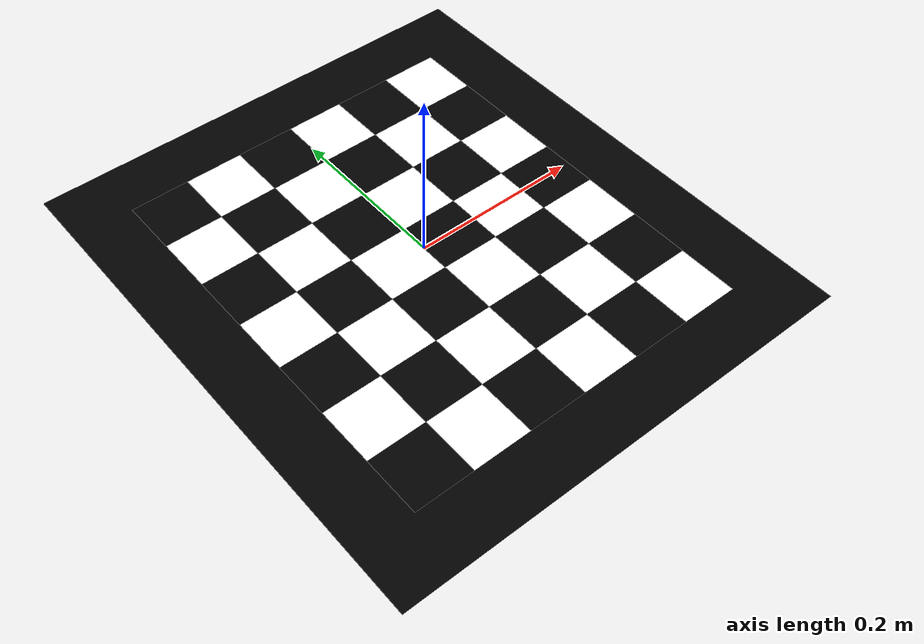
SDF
<?xml version="1.0"?>
<sdf version="1.4">
  <model name="checkerboard_6_7_0_07">
  <static>true</static>
  <link name="checkerboard_6_7_0_07_body">
      <visual name="checker_0_0">
        <pose>-0.17500000000000002 -0.21000000000000002 0 0 0 0</pose>
        <geometry>
          <box>
            <size>0.07 0.07 0.0002</size>
          </box>
        </geometry>
        <material>
          <ambient>0 0 0 1</ambient>
          <diffuse>0 0 0 1</diffuse>
          <specular>0.1 0.1 0.1 1</specular>
          <emissive>0 0 0 0</emissive>
        </material>
      </visual>
      <visual name="checker_0_1">
        <pose>-0.17500000000000002 -0.14 0 0 0 0</pose>
        <geometry>
          <box>
            <size>0.07 0.07 0.0002</size>
          </box>
        </geometry>
        <material>
          <ambient>1 1 1 1</ambient>
          <diffuse>1 1 1 1</diffuse>
          <specular>0.1 0.1 0.1 1</specular>
          <emissive>0 0 0 0</emissive>
        </material>
      </visual>
      <visual name="checker_0_2">
        <pose>-0.17500000000000002 -0.07 0 0 0 0</pose>
        <geometry>
          <box>
            <size>0.07 0.07 0.0002</size>
          </box>
        </geometry>
        <material>
          <ambient>0 0 0 1</ambient>
          <diffuse>0 0 0 1</diffuse>
          <specular>0.1 0.1 0.1 1</specular>
          <emissive>0 0 0 0</emissive>
        </material>
      </visual>
      <visual name="checker_0_3">
        <pose>-0.17500000000000002 0.0 0 0 0 0</pose>
        <geometry>
          <box>
            <size>0.07 0.07 0.0002</size>
          </box>
        </geometry>
        <material>
          <ambient>1 1 1 1</ambient>
          <diffuse>1 1 1 1</diffuse>
          <specular>0.1 0.1 0.1 1</specular>
          <emissive>0 0 0 0</emissive>
        </material>
      </visual>
      <visual name="checker_0_4">
        <pose>-0.17500000000000002 0.07000000000000003 0 0 0 0</pose>
        <geometry>
          <box>
            <size>0.07 0.07 0.0002</size>
          </box>
        </geometry>
        <material>
          <ambient>0 0 0 1</ambient>
          <diffuse>0 0 0 1</diffuse>
          <specular>0.1 0.1 0.1 1</specular>
          <emissive>0 0 0 0</emissive>
        </material>
      </visual>
      <visual name="checker_0_5">
        <pose>-0.17500000000000002 0.13999999999999999 0 0 0 0</pose>
        <geometry>
          <box>
            <size>0.07 0.07 0.0002</size>
          </box>
        </geometry>
        <material>
          <ambient>1 1 1 1</ambient>
          <diffuse>1 1 1 1</diffuse>
          <specular>0.1 0.1 0.1 1</specular>
          <emissive>0 0 0 0</emissive>
        </material>
      </visual>
      <visual name="checker_0_6">
        <pose>-0.17500000000000002 0.21000000000000005 0 0 0 0</pose>
        <geometry>
          <box>
            <size>0.07 0.07 0.0002</size>
          </box>
        </geometry>
        <material>
          <ambient>0 0 0 1</ambient>
          <diffuse>0 0 0 1</diffuse>
          <specular>0.1 0.1 0.1 1</specular>
          <emissive>0 0 0 0</emissive>
        </material>
      </visual>
      <visual name="checker_1_0">
        <pose>-0.10500000000000001 -0.21000000000000002 0 0 0 0</pose>
        <geometry>
          <box>
            <size>0.07 0.07 0.0002</size>
          </box>
        </geometry>
        <material>
          <ambient>1 1 1 1</ambient>
          <diffuse>1 1 1 1</diffuse>
          <specular>0.1 0.1 0.1 1</specular>
          <emissive>0 0 0 0</emissive>
        </material>
      </visual>
      <visual name="checker_1_1">
        <pose>-0.10500000000000001 -0.14 0 0 0 0</pose>
        <geometry>
          <box>
            <size>0.07 0.07 0.0002</size>
          </box>
        </geometry>
        <material>
          <ambient>0 0 0 1</ambient>
          <diffuse>0 0 0 1</diffuse>
          <specular>0.1 0.1 0.1 1</specular>
          <emissive>0 0 0 0</emissive>
        </material>
      </visual>
      <visual name="checker_1_2">
        <pose>-0.10500000000000001 -0.07 0 0 0 0</pose>
        <geometry>
          <box>
            <size>0.07 0.07 0.0002</size>
          </box>
        </geometry>
        <material>
          <ambient>1 1 1 1</ambient>
          <diffuse>1 1 1 1</diffuse>
          <specular>0.1 0.1 0.1 1</specular>
          <emissive>0 0 0 0</emissive>
        </material>
      </visual>
      <visual name="checker_1_3">
        <pose>-0.10500000000000001 0.0 0 0 0 0</pose>
        <geometry>
          <box>
            <size>0.07 0.07 0.0002</size>
          </box>
        </geometry>
        <material>
          <ambient>0 0 0 1</ambient>
          <diffuse>0 0 0 1</diffuse>
          <specular>0.1 0.1 0.1 1</specular>
          <emissive>0 0 0 0</emissive>
        </material>
      </visual>
      <visual name="checker_1_4">
        <pose>-0.10500000000000001 0.07000000000000003 0 0 0 0</pose>
        <geometry>
          <box>
            <size>0.07 0.07 0.0002</size>
          </box>
        </geometry>
        <material>
          <ambient>1 1 1 1</ambient>
          <diffuse>1 1 1 1</diffuse>
          <specular>0.1 0.1 0.1 1</specular>
          <emissive>0 0 0 0</emissive>
        </material>
      </visual>
      <visual name="checker_1_5">
        <pose>-0.10500000000000001 0.13999999999999999 0 0 0 0</pose>
        <geometry>
          <box>
            <size>0.07 0.07 0.0002</size>
          </box>
        </geometry>
        <material>
          <ambient>0 0 0 1</ambient>
          <diffuse>0 0 0 1</diffuse>
          <specular>0.1 0.1 0.1 1</specular>
          <emissive>0 0 0 0</emissive>
        </material>
      </visual>
      <visual name="checker_1_6">
        <pose>-0.10500000000000001 0.21000000000000005 0 0 0 0</pose>
        <geometry>
          <box>
            <size>0.07 0.07 0.0002</size>
          </box>
        </geometry>
        <material>
          <ambient>1 1 1 1</ambient>
          <diffuse>1 1 1 1</diffuse>
          <specular>0.1 0.1 0.1 1</specular>
          <emissive>0 0 0 0</emissive>
        </material>
      </visual>
      <visual name="checker_2_0">
        <pose>-0.035 -0.21000000000000002 0 0 0 0</pose>
        <geometry>
          <box>
            <size>0.07 0.07 0.0002</size>
          </box>
        </geometry>
        <material>
          <ambient>0 0 0 1</ambient>
          <diffuse>0 0 0 1</diffuse>
          <specular>0.1 0.1 0.1 1</specular>
          <emissive>0 0 0 0</emissive>
        </material>
      </visual>
      <visual name="checker_2_1">
        <pose>-0.035 -0.14 0 0 0 0</pose>
        <geometry>
          <box>
            <size>0.07 0.07 0.0002</size>
          </box>
        </geometry>
        <material>
          <ambient>1 1 1 1</ambient>
          <diffuse>1 1 1 1</diffuse>
          <specular>0.1 0.1 0.1 1</specular>
          <emissive>0 0 0 0</emissive>
        </material>
      </visual>
      <visual name="checker_2_2">
        <pose>-0.035 -0.07 0 0 0 0</pose>
        <geometry>
          <box>
            <size>0.07 0.07 0.0002</size>
          </box>
        </geometry>
        <material>
          <ambient>0 0 0 1</ambient>
          <diffuse>0 0 0 1</diffuse>
          <specular>0.1 0.1 0.1 1</specular>
          <emissive>0 0 0 0</emissive>
        </material>
      </visual>
      <visual name="checker_2_3">
        <pose>-0.035 0.0 0 0 0 0</pose>
        <geometry>
          <box>
            <size>0.07 0.07 0.0002</size>
          </box>
        </geometry>
        <material>
          <ambient>1 1 1 1</ambient>
          <diffuse>1 1 1 1</diffuse>
          <specular>0.1 0.1 0.1 1</specular>
          <emissive>0 0 0 0</emissive>
        </material>
      </visual>
      <visual name="checker_2_4">
        <pose>-0.035 0.07000000000000003 0 0 0 0</pose>
        <geometry>
          <box>
            <size>0.07 0.07 0.0002</size>
          </box>
        </geometry>
        <material>
          <ambient>0 0 0 1</ambient>
          <diffuse>0 0 0 1</diffuse>
          <specular>0.1 0.1 0.1 1</specular>
          <emissive>0 0 0 0</emissive>
        </material>
      </visual>
      <visual name="checker_2_5">
        <pose>-0.035 0.13999999999999999 0 0 0 0</pose>
        <geometry>
          <box>
            <size>0.07 0.07 0.0002</size>
          </box>
        </geometry>
        <material>
          <ambient>1 1 1 1</ambient>
          <diffuse>1 1 1 1</diffuse>
          <specular>0.1 0.1 0.1 1</specular>
          <emissive>0 0 0 0</emissive>
        </material>
      </visual>
      <visual name="checker_2_6">
        <pose>-0.035 0.21000000000000005 0 0 0 0</pose>
        <geometry>
          <box>
            <size>0.07 0.07 0.0002</size>
          </box>
        </geometry>
        <material>
          <ambient>0 0 0 1</ambient>
          <diffuse>0 0 0 1</diffuse>
          <specular>0.1 0.1 0.1 1</specular>
          <emissive>0 0 0 0</emissive>
        </material>
      </visual>
      <visual name="checker_3_0">
        <pose>0.035 -0.21000000000000002 0 0 0 0</pose>
        <geometry>
          <box>
            <size>0.07 0.07 0.0002</size>
          </box>
        </geometry>
        <material>
          <ambient>1 1 1 1</ambient>
          <diffuse>1 1 1 1</diffuse>
          <specular>0.1 0.1 0.1 1</specular>
          <emissive>0 0 0 0</emissive>
        </material>
      </visual>
      <visual name="checker_3_1">
        <pose>0.035 -0.14 0 0 0 0</pose>
        <geometry>
          <box>
            <size>0.07 0.07 0.0002</size>
          </box>
        </geometry>
        <material>
          <ambient>0 0 0 1</ambient>
          <diffuse>0 0 0 1</diffuse>
          <specular>0.1 0.1 0.1 1</specular>
          <emissive>0 0 0 0</emissive>
        </material>
      </visual>
      <visual name="checker_3_2">
        <pose>0.035 -0.07 0 0 0 0</pose>
        <geometry>
          <box>
            <size>0.07 0.07 0.0002</size>
          </box>
        </geometry>
        <material>
          <ambient>1 1 1 1</ambient>
          <diffuse>1 1 1 1</diffuse>
          <specular>0.1 0.1 0.1 1</specular>
          <emissive>0 0 0 0</emissive>
        </material>
      </visual>
      <visual name="checker_3_3">
        <pose>0.035 0.0 0 0 0 0</pose>
        <geometry>
          <box>
            <size>0.07 0.07 0.0002</size>
          </box>
        </geometry>
        <material>
          <ambient>0 0 0 1</ambient>
          <diffuse>0 0 0 1</diffuse>
          <specular>0.1 0.1 0.1 1</specular>
          <emissive>0 0 0 0</emissive>
        </material>
      </visual>
      <visual name="checker_3_4">
        <pose>0.035 0.07000000000000003 0 0 0 0</pose>
        <geometry>
          <box>
            <size>0.07 0.07 0.0002</size>
          </box>
        </geometry>
        <material>
          <ambient>1 1 1 1</ambient>
          <diffuse>1 1 1 1</diffuse>
          <specular>0.1 0.1 0.1 1</specular>
          <emissive>0 0 0 0</emissive>
        </material>
      </visual>
      <visual name="checker_3_5">
        <pose>0.035 0.13999999999999999 0 0 0 0</pose>
        <geometry>
          <box>
            <size>0.07 0.07 0.0002</size>
          </box>
        </geometry>
        <material>
          <ambient>0 0 0 1</ambient>
          <diffuse>0 0 0 1</diffuse>
          <specular>0.1 0.1 0.1 1</specular>
          <emissive>0 0 0 0</emissive>
        </material>
      </visual>
      <visual name="checker_3_6">
        <pose>0.035 0.21000000000000005 0 0 0 0</pose>
        <geometry>
          <box>
            <size>0.07 0.07 0.0002</size>
          </box>
        </geometry>
        <material>
          <ambient>1 1 1 1</ambient>
          <diffuse>1 1 1 1</diffuse>
          <specular>0.1 0.1 0.1 1</specular>
          <emissive>0 0 0 0</emissive>
        </material>
      </visual>
      <visual name="checker_4_0">
        <pose>0.10500000000000004 -0.21000000000000002 0 0 0 0</pose>
        <geometry>
          <box>
            <size>0.07 0.07 0.0002</size>
          </box>
        </geometry>
        <material>
          <ambient>0 0 0 1</ambient>
          <diffuse>0 0 0 1</diffuse>
          <specular>0.1 0.1 0.1 1</specular>
          <emissive>0 0 0 0</emissive>
        </material>
      </visual>
      <visual name="checker_4_1">
        <pose>0.10500000000000004 -0.14 0 0 0 0</pose>
        <geometry>
          <box>
            <size>0.07 0.07 0.0002</size>
          </box>
        </geometry>
        <material>
          <ambient>1 1 1 1</ambient>
          <diffuse>1 1 1 1</diffuse>
          <specular>0.1 0.1 0.1 1</specular>
          <emissive>0 0 0 0</emissive>
        </material>
      </visual>
      <visual name="checker_4_2">
        <pose>0.10500000000000004 -0.07 0 0 0 0</pose>
        <geometry>
          <box>
            <size>0.07 0.07 0.0002</size>
          </box>
        </geometry>
        <material>
          <ambient>0 0 0 1</ambient>
          <diffuse>0 0 0 1</diffuse>
          <specular>0.1 0.1 0.1 1</specular>
          <emissive>0 0 0 0</emissive>
        </material>
      </visual>
      <visual name="checker_4_3">
        <pose>0.10500000000000004 0.0 0 0 0 0</pose>
        <geometry>
          <box>
            <size>0.07 0.07 0.0002</size>
          </box>
        </geometry>
        <material>
          <ambient>1 1 1 1</ambient>
          <diffuse>1 1 1 1</diffuse>
          <specular>0.1 0.1 0.1 1</specular>
          <emissive>0 0 0 0</emissive>
        </material>
      </visual>
      <visual name="checker_4_4">
        <pose>0.10500000000000004 0.07000000000000003 0 0 0 0</pose>
        <geometry>
          <box>
            <size>0.07 0.07 0.0002</size>
          </box>
        </geometry>
        <material>
          <ambient>0 0 0 1</ambient>
          <diffuse>0 0 0 1</diffuse>
          <specular>0.1 0.1 0.1 1</specular>
          <emissive>0 0 0 0</emissive>
        </material>
      </visual>
      <visual name="checker_4_5">
        <pose>0.10500000000000004 0.13999999999999999 0 0 0 0</pose>
        <geometry>
          <box>
            <size>0.07 0.07 0.0002</size>
          </box>
        </geometry>
        <material>
          <ambient>1 1 1 1</ambient>
          <diffuse>1 1 1 1</diffuse>
          <specular>0.1 0.1 0.1 1</specular>
          <emissive>0 0 0 0</emissive>
        </material>
      </visual>
      <visual name="checker_4_6">
        <pose>0.10500000000000004 0.21000000000000005 0 0 0 0</pose>
        <geometry>
          <box>
            <size>0.07 0.07 0.0002</size>
          </box>
        </geometry>
        <material>
          <ambient>0 0 0 1</ambient>
          <diffuse>0 0 0 1</diffuse>
          <specular>0.1 0.1 0.1 1</specular>
          <emissive>0 0 0 0</emissive>
        </material>
      </visual>
      <visual name="checker_5_0">
        <pose>0.175 -0.21000000000000002 0 0 0 0</pose>
        <geometry>
          <box>
            <size>0.07 0.07 0.0002</size>
          </box>
        </geometry>
        <material>
          <ambient>1 1 1 1</ambient>
          <diffuse>1 1 1 1</diffuse>
          <specular>0.1 0.1 0.1 1</specular>
          <emissive>0 0 0 0</emissive>
        </material>
      </visual>
      <visual name="checker_5_1">
        <pose>0.175 -0.14 0 0 0 0</pose>
        <geometry>
          <box>
            <size>0.07 0.07 0.0002</size>
          </box>
        </geometry>
        <material>
          <ambient>0 0 0 1</ambient>
          <diffuse>0 0 0 1</diffuse>
          <specular>0.1 0.1 0.1 1</specular>
          <emissive>0 0 0 0</emissive>
        </material>
      </visual>
      <visual name="checker_5_2">
        <pose>0.175 -0.07 0 0 0 0</pose>
        <geometry>
          <box>
            <size>0.07 0.07 0.0002</size>
          </box>
        </geometry>
        <material>
          <ambient>1 1 1 1</ambient>
          <diffuse>1 1 1 1</diffuse>
          <specular>0.1 0.1 0.1 1</specular>
          <emissive>0 0 0 0</emissive>
        </material>
      </visual>
      <visual name="checker_5_3">
        <pose>0.175 0.0 0 0 0 0</pose>
        <geometry>
          <box>
            <size>0.07 0.07 0.0002</size>
          </box>
        </geometry>
        <material>
          <ambient>0 0 0 1</ambient>
          <diffuse>0 0 0 1</diffuse>
          <specular>0.1 0.1 0.1 1</specular>
          <emissive>0 0 0 0</emissive>
        </material>
      </visual>
      <visual name="checker_5_4">
        <pose>0.175 0.07000000000000003 0 0 0 0</pose>
        <geometry>
          <box>
            <size>0.07 0.07 0.0002</size>
          </box>
        </geometry>
        <material>
          <ambient>1 1 1 1</ambient>
          <diffuse>1 1 1 1</diffuse>
          <specular>0.1 0.1 0.1 1</specular>
          <emissive>0 0 0 0</emissive>
        </material>
      </visual>
      <visual name="checker_5_5">
        <pose>0.175 0.13999999999999999 0 0 0 0</pose>
        <geometry>
          <box>
            <size>0.07 0.07 0.0002</size>
          </box>
        </geometry>
        <material>
          <ambient>0 0 0 1</ambient>
          <diffuse>0 0 0 1</diffuse>
          <specular>0.1 0.1 0.1 1</specular>
          <emissive>0 0 0 0</emissive>
        </material>
      </visual>
      <visual name="checker_5_6">
        <pose>0.175 0.21000000000000005 0 0 0 0</pose>
        <geometry>
          <box>
            <size>0.07 0.07 0.0002</size>
          </box>
        </geometry>
        <material>
          <ambient>1 1 1 1</ambient>
          <diffuse>1 1 1 1</diffuse>
          <specular>0.1 0.1 0.1 1</specular>
          <emissive>0 0 0 0</emissive>
        </material>
      </visual>
      <visual name="checker_backdrop">
        <pose>0 0 0 0 0 0</pose>
        <geometry>
          <box>
            <size>0.56 0.6300000000000001 0.0001</size>
          </box>
        </geometry>
        <material>
          <ambient>1 1 1 1</ambient>
          <diffuse>0 0 0 0</diffuse>
          <specular>0.1 0.1 0.1 1</specular>
          <emissive>0 0 0 0</emissive>
        </material>
      </visual>
    </link>
  </model>
</sdf>
